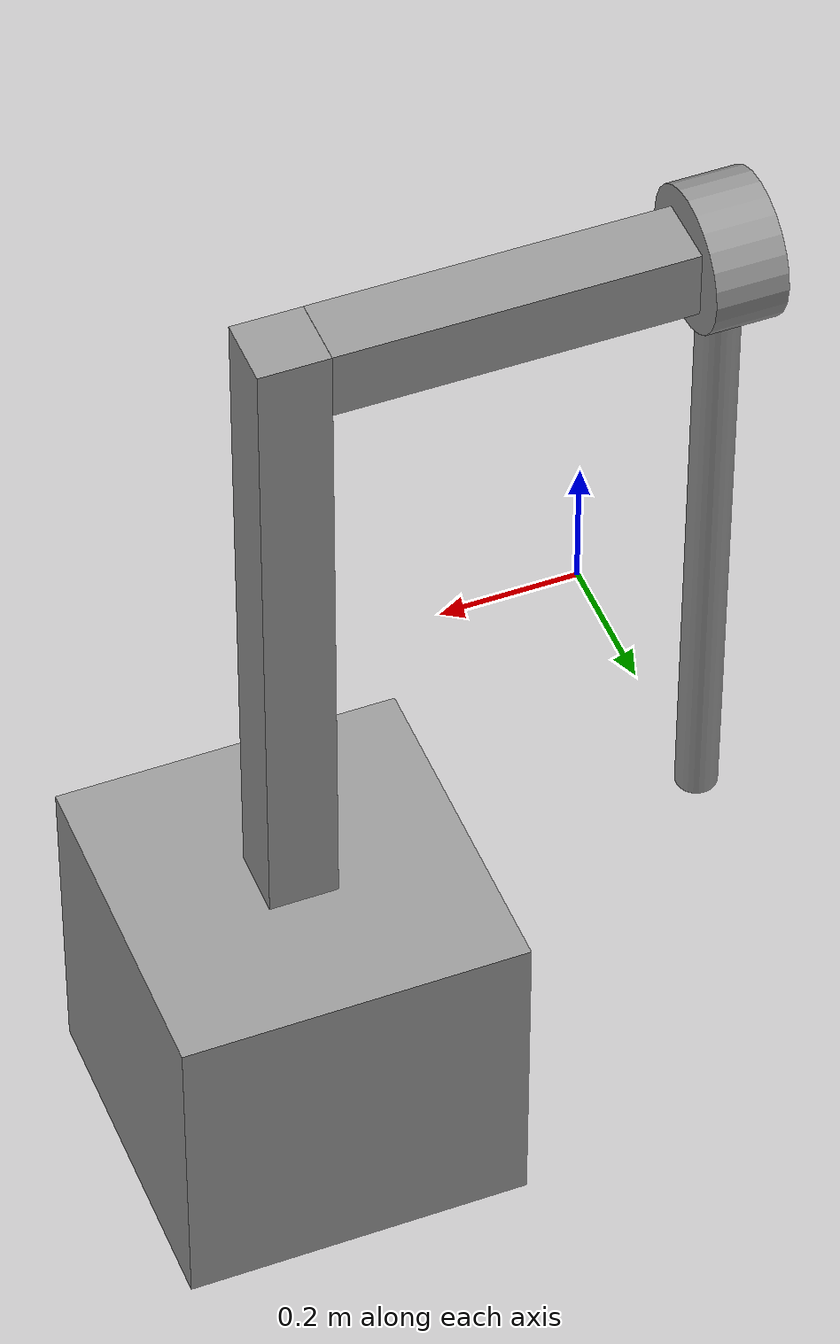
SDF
<?xml version='1.0'?>
<sdf version='1.7'>
  <model name='AA'>
    <link name='link_0'>
      <inertial>
        <mass>50</mass>
        <inertia>
          <ixx>8.33333</ixx>
          <ixy>0</ixy>
          <ixz>0</ixz>
          <iyy>8.33333</iyy>
          <iyz>0</iyz>
          <izz>8.33333</izz>
        </inertia>
        <pose>0 0 0 0 -0 0</pose>
      </inertial>
      <pose>0.466776 0.124023 -0.534984 0 -0 0</pose>
      <gravity>1</gravity>
      <self_collide>0</self_collide>
      <kinematic>0</kinematic>
      <enable_wind>0</enable_wind>
      <visual name='visual'>
        <pose>0 0 0 0 -0 0</pose>
        <geometry>
          <box>
            <size>0.5 0.5 0.5</size>
          </box>
        </geometry>
        <material>
          <lighting>1</lighting>
          <script>
            <uri>file://media/materials/scripts/gazebo.material</uri>
            <name>Gazebo/Grey</name>
          </script>
          <shader type='pixel'>
            <normal_map>__default__</normal_map>
          </shader>
          <ambient>0.3 0.3 0.3 1</ambient>
          <diffuse>0.7 0.7 0.7 1</diffuse>
          <specular>0.01 0.01 0.01 1</specular>
          <emissive>0 0 0 1</emissive>
        </material>
        <transparency>0</transparency>
        <cast_shadows>1</cast_shadows>
      </visual>
      <collision name='collision'>
        <laser_retro>0</laser_retro>
        <max_contacts>10</max_contacts>
        <pose>0 0 0 0 -0 0</pose>
        <geometry>
          <box>
            <size>0.5 0.5 0.5</size>
          </box>
        </geometry>
        <surface>
          <friction>
            <ode>
              <mu>1</mu>
              <mu2>1</mu2>
              <fdir1>0 0 0</fdir1>
              <slip1>0</slip1>
              <slip2>0</slip2>
            </ode>
            <torsional>
              <coefficient>1</coefficient>
              <patch_radius>0</patch_radius>
              <surface_radius>0</surface_radius>
              <use_patch_radius>1</use_patch_radius>
              <ode>
                <slip>0</slip>
              </ode>
            </torsional>
          </friction>
          <bounce>
            <restitution_coefficient>0</restitution_coefficient>
            <threshold>1e+06</threshold>
          </bounce>
          <contact>
            <collide_without_contact>0</collide_without_contact>
            <collide_without_contact_bitmask>1</collide_without_contact_bitmask>
            <collide_bitmask>1</collide_bitmask>
            <ode>
              <soft_cfm>0</soft_cfm>
              <soft_erp>0.2</soft_erp>
              <kp>1e+13</kp>
              <kd>1</kd>
              <max_vel>0.01</max_vel>
              <min_depth>0</min_depth>
            </ode>
            <bullet>
              <split_impulse>1</split_impulse>
              <split_impulse_penetration_threshold>-0.01</split_impulse_penetration_threshold>
              <soft_cfm>0</soft_cfm>
              <soft_erp>0.2</soft_erp>
              <kp>1e+13</kp>
              <kd>1</kd>
            </bullet>
          </contact>
        </surface>
      </collision>
    </link>
    <link name='link_1'>
      <inertial>
        <mass>10</mass>
        <inertia>
          <ixx>1.66667</ixx>
          <ixy>0</ixy>
          <ixz>0</ixz>
          <iyy>1.66667</iyy>
          <iyz>0</iyz>
          <izz>1.66667</izz>
        </inertia>
        <pose>0 0 0 0 -0 0</pose>
      </inertial>
      <pose>0.466776 0.124023 0.215016 0 -0 0</pose>
      <gravity>1</gravity>
      <self_collide>0</self_collide>
      <kinematic>0</kinematic>
      <enable_wind>0</enable_wind>
      <visual name='visual'>
        <pose>0 0 0 0 -0 0</pose>
        <geometry>
          <box>
            <size>0.1 0.1 1</size>
          </box>
        </geometry>
        <material>
          <lighting>1</lighting>
          <script>
            <uri>file://media/materials/scripts/gazebo.material</uri>
            <name>Gazebo/Grey</name>
          </script>
          <shader type='pixel'>
            <normal_map>__default__</normal_map>
          </shader>
          <ambient>0.3 0.3 0.3 1</ambient>
          <diffuse>0.7 0.7 0.7 1</diffuse>
          <specular>0.01 0.01 0.01 1</specular>
          <emissive>0 0 0 1</emissive>
        </material>
        <transparency>0</transparency>
        <cast_shadows>1</cast_shadows>
      </visual>
      <collision name='collision'>
        <laser_retro>0</laser_retro>
        <max_contacts>10</max_contacts>
        <pose>0 0 0 0 -0 0</pose>
        <geometry>
          <box>
            <size>0.1 0.1 1</size>
          </box>
        </geometry>
        <surface>
          <friction>
            <ode>
              <mu>1</mu>
              <mu2>1</mu2>
              <fdir1>0 0 0</fdir1>
              <slip1>0</slip1>
              <slip2>0</slip2>
            </ode>
            <torsional>
              <coefficient>1</coefficient>
              <patch_radius>0</patch_radius>
              <surface_radius>0</surface_radius>
              <use_patch_radius>1</use_patch_radius>
              <ode>
                <slip>0</slip>
              </ode>
            </torsional>
          </friction>
          <bounce>
            <restitution_coefficient>0</restitution_coefficient>
            <threshold>1e+06</threshold>
          </bounce>
          <contact>
            <collide_without_contact>0</collide_without_contact>
            <collide_without_contact_bitmask>1</collide_without_contact_bitmask>
            <collide_bitmask>1</collide_bitmask>
            <ode>
              <soft_cfm>0</soft_cfm>
              <soft_erp>0.2</soft_erp>
              <kp>1e+13</kp>
              <kd>1</kd>
              <max_vel>0.01</max_vel>
              <min_depth>0</min_depth>
            </ode>
            <bullet>
              <split_impulse>1</split_impulse>
              <split_impulse_penetration_threshold>-0.01</split_impulse_penetration_threshold>
              <soft_cfm>0</soft_cfm>
              <soft_erp>0.2</soft_erp>
              <kp>1e+13</kp>
              <kd>1</kd>
            </bullet>
          </contact>
        </surface>
      </collision>
    </link>
    <link name='link_2'>
      <inertial>
        <mass>2</mass>
        <inertia>
          <ixx>0.333333</ixx>
          <ixy>0</ixy>
          <ixz>0</ixz>
          <iyy>0.333333</iyy>
          <iyz>0</iyz>
          <izz>0.333333</izz>
        </inertia>
        <pose>0 0 0 0 -0 0</pose>
      </inertial>
      <pose>0.166776 0.124023 0.665016 0 -0 0</pose>
      <gravity>1</gravity>
      <self_collide>0</self_collide>
      <kinematic>0</kinematic>
      <enable_wind>0</enable_wind>
      <visual name='visual'>
        <pose>0 0 0 0 1.57 0</pose>
        <geometry>
          <box>
            <size>0.1 0.1 0.5</size>
          </box>
        </geometry>
        <material>
          <lighting>1</lighting>
          <script>
            <uri>file://media/materials/scripts/gazebo.material</uri>
            <name>Gazebo/Grey</name>
          </script>
          <shader type='pixel'>
            <normal_map>__default__</normal_map>
          </shader>
          <ambient>0.3 0.3 0.3 1</ambient>
          <diffuse>0.7 0.7 0.7 1</diffuse>
          <specular>0.01 0.01 0.01 1</specular>
          <emissive>0 0 0 1</emissive>
        </material>
        <transparency>0</transparency>
        <cast_shadows>1</cast_shadows>
      </visual>
      <collision name='collision'>
        <laser_retro>0</laser_retro>
        <max_contacts>10</max_contacts>
        <pose>0 0 0 0 1.57 0</pose>
        <geometry>
          <box>
            <size>0.1 0.1 0.5</size>
          </box>
        </geometry>
        <surface>
          <friction>
            <ode>
              <mu>1</mu>
              <mu2>1</mu2>
              <fdir1>0 0 0</fdir1>
              <slip1>0</slip1>
              <slip2>0</slip2>
            </ode>
            <torsional>
              <coefficient>1</coefficient>
              <patch_radius>0</patch_radius>
              <surface_radius>0</surface_radius>
              <use_patch_radius>1</use_patch_radius>
              <ode>
                <slip>0</slip>
              </ode>
            </torsional>
          </friction>
          <bounce>
            <restitution_coefficient>0</restitution_coefficient>
            <threshold>1e+06</threshold>
          </bounce>
          <contact>
            <collide_without_contact>0</collide_without_contact>
            <collide_without_contact_bitmask>1</collide_without_contact_bitmask>
            <collide_bitmask>1</collide_bitmask>
            <ode>
              <soft_cfm>0</soft_cfm>
              <soft_erp>0.2</soft_erp>
              <kp>1e+13</kp>
              <kd>1</kd>
              <max_vel>0.01</max_vel>
              <min_depth>0</min_depth>
            </ode>
            <bullet>
              <split_impulse>1</split_impulse>
              <split_impulse_penetration_threshold>-0.01</split_impulse_penetration_threshold>
              <soft_cfm>0</soft_cfm>
              <soft_erp>0.2</soft_erp>
              <kp>1e+13</kp>
              <kd>1</kd>
            </bullet>
          </contact>
        </surface>
      </collision>
    </link>
    <link name='link_3'>
      <inertial>
        <mass>2</mass>
        <inertia>
          <ixx>0.291667</ixx>
          <ixy>0</ixy>
          <ixz>0</ixz>
          <iyy>0.291667</iyy>
          <iyz>0</iyz>
          <izz>0.25</izz>
        </inertia>
        <pose>0 0 0 0 -0 0</pose>
      </inertial>
      <pose>-0.133224 0.124023 0.665016 0 -0 0</pose>
      <gravity>1</gravity>
      <self_collide>0</self_collide>
      <kinematic>0</kinematic>
      <enable_wind>0</enable_wind>
      <visual name='visual'>
        <pose>0 0 0 0 1.57 0</pose>
        <geometry>
          <cylinder>
            <radius>0.1</radius>
            <length>0.1</length>
          </cylinder>
        </geometry>
        <material>
          <lighting>1</lighting>
          <script>
            <uri>file://media/materials/scripts/gazebo.material</uri>
            <name>Gazebo/Grey</name>
          </script>
          <shader type='pixel'>
            <normal_map>__default__</normal_map>
          </shader>
          <ambient>0.3 0.3 0.3 1</ambient>
          <diffuse>0.7 0.7 0.7 1</diffuse>
          <specular>0.01 0.01 0.01 1</specular>
          <emissive>0 0 0 1</emissive>
        </material>
        <transparency>0</transparency>
        <cast_shadows>1</cast_shadows>
      </visual>
      <collision name='collision'>
        <laser_retro>0</laser_retro>
        <max_contacts>10</max_contacts>
        <pose>0 0 0 0 1.57 0</pose>
        <geometry>
          <cylinder>
            <radius>0.1</radius>
            <length>0.1</length>
          </cylinder>
        </geometry>
        <surface>
          <friction>
            <ode>
              <mu>1</mu>
              <mu2>1</mu2>
              <fdir1>0 0 0</fdir1>
              <slip1>0</slip1>
              <slip2>0</slip2>
            </ode>
            <torsional>
              <coefficient>1</coefficient>
              <patch_radius>0</patch_radius>
              <surface_radius>0</surface_radius>
              <use_patch_radius>1</use_patch_radius>
              <ode>
                <slip>0</slip>
              </ode>
            </torsional>
          </friction>
          <bounce>
            <restitution_coefficient>0</restitution_coefficient>
            <threshold>1e+06</threshold>
          </bounce>
          <contact>
            <collide_without_contact>0</collide_without_contact>
            <collide_without_contact_bitmask>1</collide_without_contact_bitmask>
            <collide_bitmask>1</collide_bitmask>
            <ode>
              <soft_cfm>0</soft_cfm>
              <soft_erp>0.2</soft_erp>
              <kp>1e+13</kp>
              <kd>1</kd>
              <max_vel>0.01</max_vel>
              <min_depth>0</min_depth>
            </ode>
            <bullet>
              <split_impulse>1</split_impulse>
              <split_impulse_penetration_threshold>-0.01</split_impulse_penetration_threshold>
              <soft_cfm>0</soft_cfm>
              <soft_erp>0.2</soft_erp>
              <kp>1e+13</kp>
              <kd>1</kd>
            </bullet>
          </contact>
        </surface>
      </collision>
    </link>
    <link name='link_5'>
      <inertial>
        <mass>5</mass>
        <inertia>
          <ixx>0.729167</ixx>
          <ixy>0</ixy>
          <ixz>0</ixz>
          <iyy>0.729167</iyy>
          <iyz>0</iyz>
          <izz>0.625</izz>
        </inertia>
        <pose>0 0 0 0 -0 0</pose>
      </inertial>
      <pose>-0.133224 0.124023 0.165016 0 -0 0</pose>
      <gravity>1</gravity>
      <self_collide>0</self_collide>
      <kinematic>0</kinematic>
      <enable_wind>0</enable_wind>
      <visual name='visual'>
        <pose>0 0 0 0 -0 0</pose>
        <geometry>
          <cylinder>
            <radius>0.03</radius>
            <length>1</length>
          </cylinder>
        </geometry>
        <material>
          <lighting>1</lighting>
          <script>
            <uri>file://media/materials/scripts/gazebo.material</uri>
            <name>Gazebo/Grey</name>
          </script>
          <shader type='pixel'>
            <normal_map>__default__</normal_map>
          </shader>
          <ambient>0.3 0.3 0.3 1</ambient>
          <diffuse>0.7 0.7 0.7 1</diffuse>
          <specular>0.01 0.01 0.01 1</specular>
          <emissive>0 0 0 1</emissive>
        </material>
        <transparency>0</transparency>
        <cast_shadows>1</cast_shadows>
      </visual>
      <collision name='collision'>
        <laser_retro>0</laser_retro>
        <max_contacts>10</max_contacts>
        <pose>0 0 0 0 -0 0</pose>
        <geometry>
          <cylinder>
            <radius>0.03</radius>
            <length>1</length>
          </cylinder>
        </geometry>
        <surface>
          <friction>
            <ode>
              <mu>1</mu>
              <mu2>1</mu2>
              <fdir1>0 0 0</fdir1>
              <slip1>0</slip1>
              <slip2>0</slip2>
            </ode>
            <torsional>
              <coefficient>1</coefficient>
              <patch_radius>0</patch_radius>
              <surface_radius>0</surface_radius>
              <use_patch_radius>1</use_patch_radius>
              <ode>
                <slip>0</slip>
              </ode>
            </torsional>
          </friction>
          <bounce>
            <restitution_coefficient>0</restitution_coefficient>
            <threshold>1e+06</threshold>
          </bounce>
          <contact>
            <collide_without_contact>0</collide_without_contact>
            <collide_without_contact_bitmask>1</collide_without_contact_bitmask>
            <collide_bitmask>1</collide_bitmask>
            <ode>
              <soft_cfm>0</soft_cfm>
              <soft_erp>0.2</soft_erp>
              <kp>1e+13</kp>
              <kd>1</kd>
              <max_vel>0.01</max_vel>
              <min_depth>0</min_depth>
            </ode>
            <bullet>
              <split_impulse>1</split_impulse>
              <split_impulse_penetration_threshold>-0.01</split_impulse_penetration_threshold>
              <soft_cfm>0</soft_cfm>
              <soft_erp>0.2</soft_erp>
              <kp>1e+13</kp>
              <kd>1</kd>
            </bullet>
          </contact>
        </surface>
      </collision>
    </link>
    <joint name='link_0_JOINT_0' type='fixed'>
      <parent>link_0</parent>
      <child>link_1</child>
      <pose>0 0 0 0 -0 0</pose>
      <physics>
        <ode>
          <limit>
            <cfm>0</cfm>
            <erp>0.2</erp>
          </limit>
          <suspension>
            <cfm>0</cfm>
            <erp>0.2</erp>
          </suspension>
        </ode>
      </physics>
    </joint>
    <joint name='link_1_JOINT_1' type='fixed'>
      <parent>link_1</parent>
      <child>link_2</child>
      <pose>0 0 0 0 -0 0</pose>
      <physics>
        <ode>
          <limit>
            <cfm>0</cfm>
            <erp>0.2</erp>
          </limit>
          <suspension>
            <cfm>0</cfm>
            <erp>0.2</erp>
          </suspension>
        </ode>
      </physics>
    </joint>
    <joint name='link_2_JOINT_2' type='revolute'>
      <parent>link_2</parent>
      <child>link_3</child>
      <pose>0 0 0 0 -0 0</pose>
      <axis>
        <xyz>1 0 0</xyz>
        <limit>
          <lower>-1.79769e+308</lower>
          <upper>1.79769e+308</upper>
          <effort>-1</effort>
          <velocity>-1</velocity>
        </limit>
        <dynamics>
          <spring_reference>0</spring_reference>
          <spring_stiffness>0</spring_stiffness>
          <damping>0</damping>
          <friction>0</friction>
        </dynamics>
      </axis>
      <physics>
        <ode>
          <limit>
            <cfm>0</cfm>
            <erp>0.2</erp>
          </limit>
          <suspension>
            <cfm>0</cfm>
            <erp>0.2</erp>
          </suspension>
        </ode>
      </physics>
    </joint>
    <joint name='link_3_JOINT_3' type='fixed'>
      <parent>link_3</parent>
      <child>link_5</child>
      <pose>0 0 0 0 -0 0</pose>
      <physics>
        <ode>
          <limit>
            <cfm>0</cfm>
            <erp>0.2</erp>
          </limit>
          <suspension>
            <cfm>0</cfm>
            <erp>0.2</erp>
          </suspension>
        </ode>
      </physics>
    </joint>
    <static>0</static>
    <allow_auto_disable>1</allow_auto_disable>
    <plugin name='gazebo_ros_control' filename='libgazebo_ros_control.so'/>
  </model>
</sdf>
